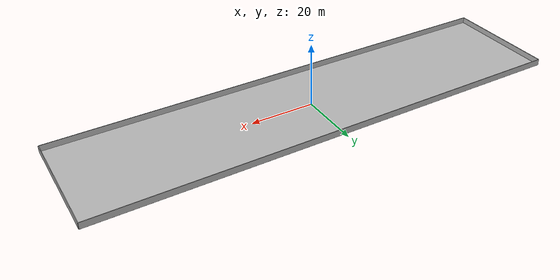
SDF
<?xml version="1.0"?>
<sdf version="1.9">
	<world name="igvc_empty_track_world">
		<!-- Physics: ODE engine with defaults -->
		<physics name="ode_physics" default="true" type="ode">
			<!-- time step and max step controls -->
			<max_step_size>0.001</max_step_size>
			<real_time_update_rate>1000</real_time_update_rate>
			<!-- standard gravity along -Z -->
			<gravity>0 0 -9.81</gravity>
			<!-- solver params (default-ish) -->
			<ode>
				<solver>
					<type>quick</type>
					<iters>50</iters>
					<sor>1.3</sor>
				</solver>
				<constraints>
					<cfm>0.0</cfm>
					<erp>0.2</erp>
					<contact_max_correcting_vel>100.0</contact_max_correcting_vel>
					<contact_surface_layer>0.001</contact_surface_layer>
				</constraints>
			</ode>
		</physics>

		<!-- Ambient and directional light (sun) -->
		<scene>
			<ambient>0.4 0.4 0.4 1</ambient>
			<background>0.7 0.8 1 1</background>
		</scene>

		<sun>
			<pose>0 0 100 0 0 0</pose>
			<diffuse>1 1 0.9 1</diffuse>
			<specular>0.2 0.2 0.2 1</specular>
			<attenuation>
				<range>1000</range>
			</attenuation>
		</sun>

		<!-- A finite ground represented by a thin static box to emulate a 500ft x 120ft plane -->
		<!-- 500 ft = 152.4 m ; 120 ft = 36.576 m -->
		<model name="finite_ground">
			<static>true</static>
			<pose>0 0 0 0 0 0</pose>

			<link name="ground_link">
				<!-- Visual: simple concrete-like color -->
				<visual name="ground_visual">
					<geometry>
						<box>
							<size>152.4 36.576 0.2</size>
						</box>
					</geometry>
				</visual>

				<!-- Collision: matches the visual geometry -->
				<collision name="ground_collision">
					<geometry>
						<box>
							<size>152.4 36.576 0.2</size>
						</box>
					</geometry>
					<surface>
						<friction>
							<ode>
								<mu>1.0</mu>
								<mu2>1.0</mu2>
							</ode>
						</friction>
						<contact>
							<ode>
								<soft_cfm>0.0</soft_cfm>
								<soft_erp>0.2</soft_erp>
							</ode>
						</contact>
					</surface>
				</collision>

				<!-- Give the ground a tiny inertial so physics sees it, but keep it static -->
				<inertial>
					<mass>1.0</mass>
					<inertia>
						<ixx>0.01</ixx>
						<iyy>0.01</iyy>
						<izz>0.01</izz>
					</inertia>
				</inertial>
			</link>
		</model>

		<!-- Optional boundary walls to keep things on the track -->
		<model name="boundary_walls">
			<static>true</static>
			<pose>0 0 0 0 0 0</pose>

			<!-- Long wall along +Y side -->
			<link name="wall_north">
				<pose>0 18.288 1 0 0 0</pose> <!-- half of 36.576 is 18.288 -->
				<visual name="wall_north_visual">
					<geometry>
						<box>
							<size>152.4 0.2 2</size>
						</box>
					</geometry>
					<material>
						<ambient>0.6 0.6 0.6 1</ambient>
						<diffuse>0.7 0.7 0.7 1</diffuse>
					</material>
				</visual>
				<collision name="wall_north_collision">
					<geometry>
						<box>
							<size>152.4 0.2 2</size>
						</box>
					</geometry>
				</collision>
			</link>

			<!-- Long wall along -Y side -->
			<link name="wall_south">
				<pose>0 -18.288 1 0 0 0</pose>
				<visual name="wall_south_visual">
					<geometry>
						<box>
							<size>152.4 0.2 2</size>
						</box>
					</geometry>
				</visual>
				<collision name="wall_south_collision">
					<geometry>
						<box>
							<size>152.4 0.2 2</size>
						</box>
					</geometry>
				</collision>
			</link>

			<!-- Short walls at ends along X to close the rectangle -->
			<link name="wall_east">
				<pose>76.2 0 1 0 0 0</pose> <!-- half of 152.4 is 76.2 -->
				<visual name="wall_east_visual">
					<geometry>
						<box>
							<size>0.2 36.576 2</size>
						</box>
					</geometry>
				</visual>
				<collision name="wall_east_collision">
					<geometry>
						<box>
							<size>0.2 36.576 2</size>
						</box>
					</geometry>
				</collision>
			</link>

			<link name="wall_west">
				<pose>-76.2 0 1 0 0 0</pose>
				<visual name="wall_west_visual">
					<geometry>
						<box>
							<size>0.2 36.576 2</size>
						</box>
					</geometry>
				</visual>
				<collision name="wall_west_collision">
					<geometry>
						<box>
							<size>0.2 36.576 2</size>
						</box>
					</geometry>
				</collision>
			</link>
		</model>

		<!-- GUI settings: camera position -->
		<gui fullscreen="0">
			<camera name="user_camera">
				<pose> -40 0 20 0 0 1.57</pose>
			</camera>
		</gui>

	</world>
</sdf>
